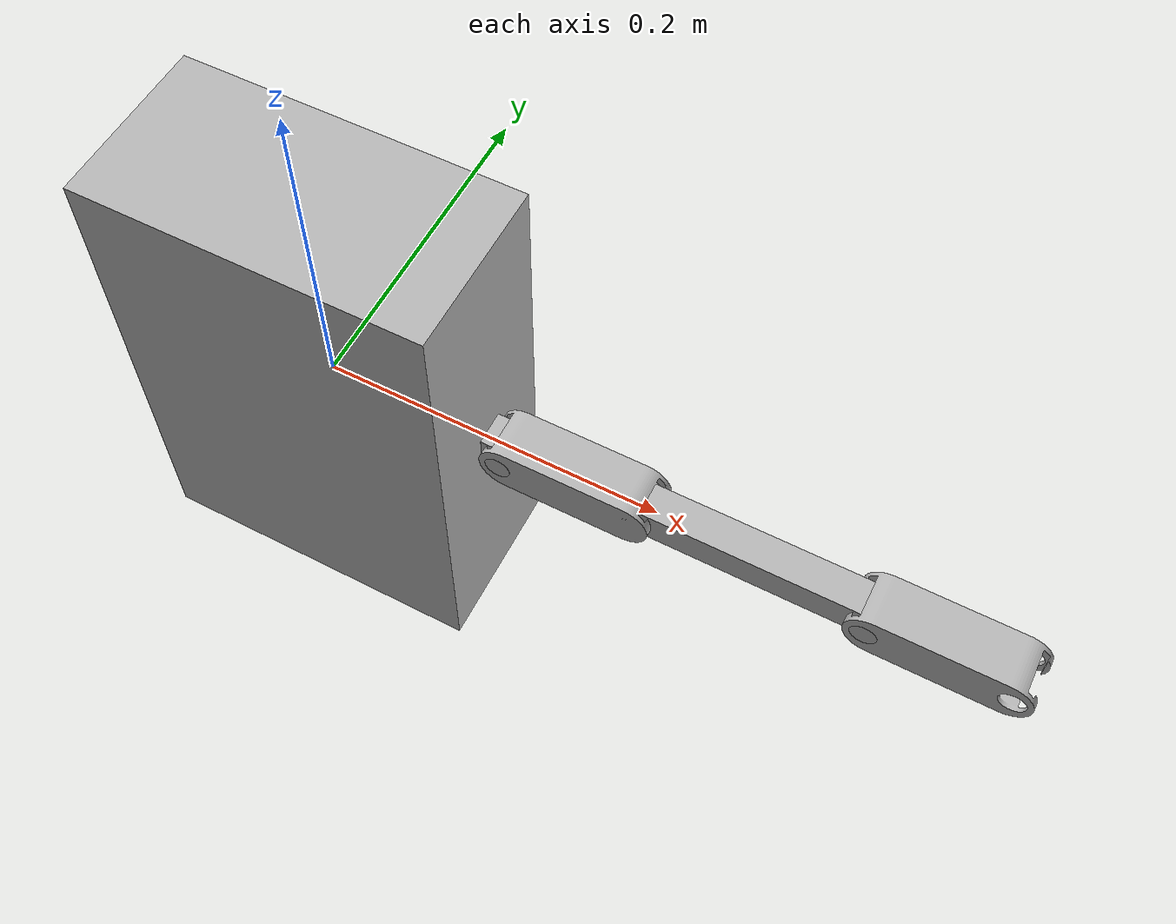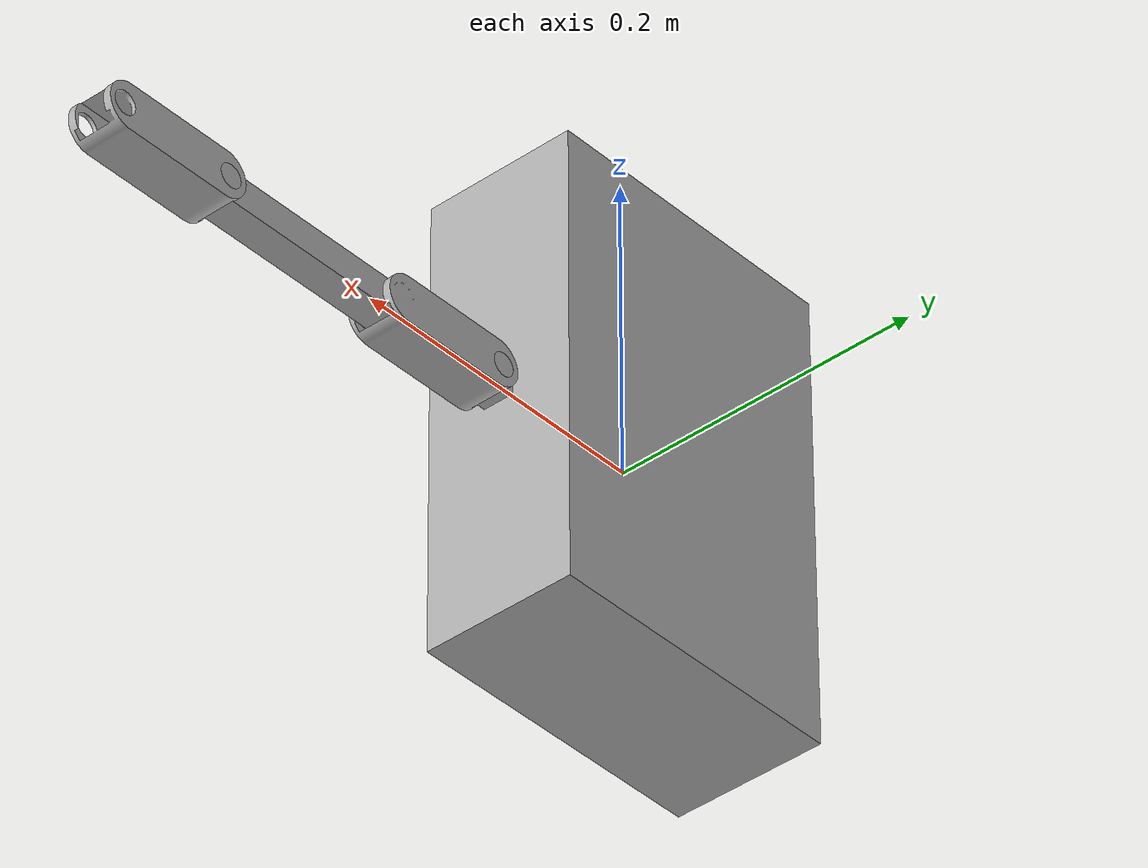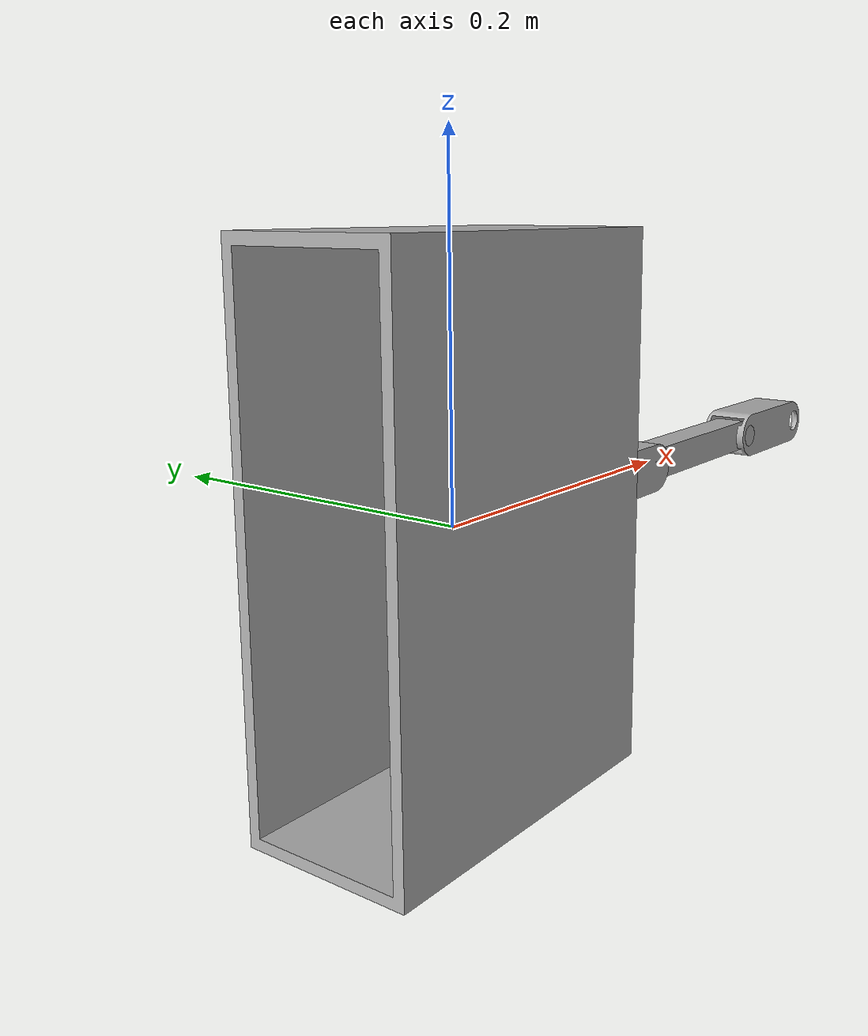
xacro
<?xml version="1.0" ?>
<robot name="3LINKARM" xmlns:xacro="http://www.ros.org/wiki/xacro">

<xacro:include filename="/mnt/c/Users/drk22/OneDrive/Rutgers MAE Fall 2025/Spacecraft Sloshing Problem Research/manipulator arm sim/3LINKARM_description/urdf/materials.xacro" />
<xacro:include filename="/mnt/c/Users/drk22/OneDrive/Rutgers MAE Fall 2025/Spacecraft Sloshing Problem Research/manipulator arm sim/3LINKARM_description/urdf/3LINKARM.trans" />
<xacro:include filename="/mnt/c/Users/drk22/OneDrive/Rutgers MAE Fall 2025/Spacecraft Sloshing Problem Research/manipulator arm sim/3LINKARM_description/urdf/3LINKARM.gazebo" />
<link name="base_link">
  <inertial>
    <origin xyz="0.014408270090721952 1.5153473686554524e-11 3.3601592816093436e-12" rpy="0 0 0"/>
    <mass value="5.321860575806323"/>
    <inertia ixx="0.062191" iyy="0.074922" izz="0.030348" ixy="-0.0" iyz="0.0" ixz="-0.0"/>
  </inertial>
  <visual>
    <origin xyz="0 0 0" rpy="0 0 0"/>
    <geometry>
      <mesh filename="file:///mnt/c/Users/drk22/OneDrive/Rutgers MAE Fall 2025/Spacecraft Sloshing Problem Research/manipulator arm sim/3LINKARM_description/meshes/base_link.stl" scale="0.001 0.001 0.001"/>
    </geometry>
    <material name="silver"/>
  </visual>
  <collision>
    <origin xyz="0 0 0" rpy="0 0 0"/>
    <geometry>
      <mesh filename="file:///mnt/c/Users/drk22/OneDrive/Rutgers MAE Fall 2025/Spacecraft Sloshing Problem Research/manipulator arm sim/3LINKARM_description/meshes/base_link.stl" scale="0.001 0.001 0.001"/>
    </geometry>
  </collision>
</link>

<link name="link_0_1">
  <inertial>
    <origin xyz="0.04343313287902885 0.014999999994012265 0.01575069015570966" rpy="0 0 0"/>
    <mass value="0.12631006738224843"/>
    <inertia ixx="3.7e-05" iyy="0.000106" izz="9.9e-05" ixy="-0.0" iyz="-0.0" ixz="-2.6e-05"/>
  </inertial>
  <visual>
    <origin xyz="-0.1125 0.015 -0.0" rpy="0 0 0"/>
    <geometry>
      <mesh filename="file:///mnt/c/Users/drk22/OneDrive/Rutgers MAE Fall 2025/Spacecraft Sloshing Problem Research/manipulator arm sim/3LINKARM_description/meshes/link_0_1.stl" scale="0.001 0.001 0.001"/>
    </geometry>
    <material name="silver"/>
  </visual>
  <collision>
    <origin xyz="-0.1125 0.015 -0.0" rpy="0 0 0"/>
    <geometry>
      <mesh filename="file:///mnt/c/Users/drk22/OneDrive/Rutgers MAE Fall 2025/Spacecraft Sloshing Problem Research/manipulator arm sim/3LINKARM_description/meshes/link_0_1.stl" scale="0.001 0.001 0.001"/>
    </geometry>
  </collision>
</link>

<link name="link_1_1">
  <inertial>
    <origin xyz="0.08468099993010422 -0.015000000000000013 -0.023425122115934678" rpy="0 0 0"/>
    <mass value="0.2548873378723056"/>
    <inertia ixx="1.8e-05" iyy="0.000434" izz="0.000435" ixy="0.0" iyz="-0.0" ixz="-0.0"/>
  </inertial>
  <visual>
    <origin xyz="-0.172316 -0.015 -0.050026" rpy="0 0 0"/>
    <geometry>
      <mesh filename="file:///mnt/c/Users/drk22/OneDrive/Rutgers MAE Fall 2025/Spacecraft Sloshing Problem Research/manipulator arm sim/3LINKARM_description/meshes/link_1_1.stl" scale="0.001 0.001 0.001"/>
    </geometry>
    <material name="silver"/>
  </visual>
  <collision>
    <origin xyz="-0.172316 -0.015 -0.050026" rpy="0 0 0"/>
    <geometry>
      <mesh filename="file:///mnt/c/Users/drk22/OneDrive/Rutgers MAE Fall 2025/Spacecraft Sloshing Problem Research/manipulator arm sim/3LINKARM_description/meshes/link_1_1.stl" scale="0.001 0.001 0.001"/>
    </geometry>
  </collision>
</link>

<link name="link_2_1">
  <inertial>
    <origin xyz="0.04338026294313668 0.01499999999261418 -0.01997655921950387" rpy="0 0 0"/>
    <mass value="0.10240058379302179"/>
    <inertia ixx="2.8e-05" iyy="7.6e-05" izz="7.5e-05" ixy="0.0" iyz="0.0" ixz="-8e-06"/>
  </inertial>
  <visual>
    <origin xyz="-0.311658 0.015 -0.053079" rpy="0 0 0"/>
    <geometry>
      <mesh filename="file:///mnt/c/Users/drk22/OneDrive/Rutgers MAE Fall 2025/Spacecraft Sloshing Problem Research/manipulator arm sim/3LINKARM_description/meshes/link_2_1.stl" scale="0.001 0.001 0.001"/>
    </geometry>
    <material name="silver"/>
  </visual>
  <collision>
    <origin xyz="-0.311658 0.015 -0.053079" rpy="0 0 0"/>
    <geometry>
      <mesh filename="file:///mnt/c/Users/drk22/OneDrive/Rutgers MAE Fall 2025/Spacecraft Sloshing Problem Research/manipulator arm sim/3LINKARM_description/meshes/link_2_1.stl" scale="0.001 0.001 0.001"/>
    </geometry>
  </collision>
</link>

<joint name="joint_0" type="revolute">
  <origin xyz="0.1125 -0.015 0.0" rpy="0 0 0"/>
  <parent link="base_link"/>
  <child link="link_0_1"/>
  <axis xyz="0.0 -1.0 0.0"/>
  <limit upper="0.349066" lower="-0.349066" effort="100" velocity="100"/>
</joint>

<joint name="joint_1" type="revolute">
  <origin xyz="0.059816 0.03 0.050026" rpy="0 0 0"/>
  <parent link="link_0_1"/>
  <child link="link_1_1"/>
  <axis xyz="0.0 1.0 -0.0"/>
  <limit upper="0.349066" lower="-0.349066" effort="100" velocity="100"/>
</joint>

<joint name="joint_2" type="revolute">
  <origin xyz="0.139342 -0.03 0.003053" rpy="0 0 0"/>
  <parent link="link_1_1"/>
  <child link="link_2_1"/>
  <axis xyz="-0.0 -1.0 0.0"/>
  <limit upper="0.349066" lower="-0.349066" effort="100" velocity="100"/>
</joint>

</robot>

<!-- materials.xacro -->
<robot name="3LINKARM" xmlns:xacro="http://www.ros.org/wiki/xacro" >

<material name="silver">
  <color rgba="0.700 0.700 0.700 1.000"/>
</material>

</robot>

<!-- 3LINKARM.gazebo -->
<robot name="3LINKARM" xmlns:xacro="http://www.ros.org/wiki/xacro" >

<xacro:property name="body_color" value="Gazebo/Silver" />

<gazebo>
  <plugin name="control" filename="libgazebo_ros_control.so"/>
</gazebo>
<gazebo reference="base_link">
  <material>${body_color}</material>
  <mu1>0.2</mu1>
  <mu2>0.2</mu2>
  <self_collide>true</self_collide>
  <gravity>true</gravity>
</gazebo>

<gazebo reference="link_0_1">
  <material>${body_color}</material>
  <mu1>0.2</mu1>
  <mu2>0.2</mu2>
  <self_collide>true</self_collide>
</gazebo>

<gazebo reference="link_1_1">
  <material>${body_color}</material>
  <mu1>0.2</mu1>
  <mu2>0.2</mu2>
  <self_collide>true</self_collide>
</gazebo>

<gazebo reference="link_2_1">
  <material>${body_color}</material>
  <mu1>0.2</mu1>
  <mu2>0.2</mu2>
  <self_collide>true</self_collide>
</gazebo>

</robot>
